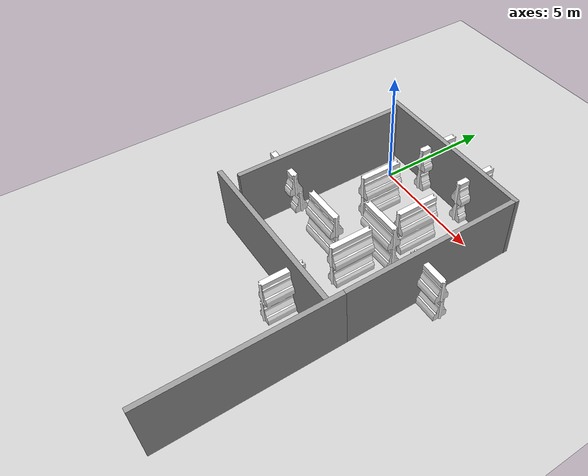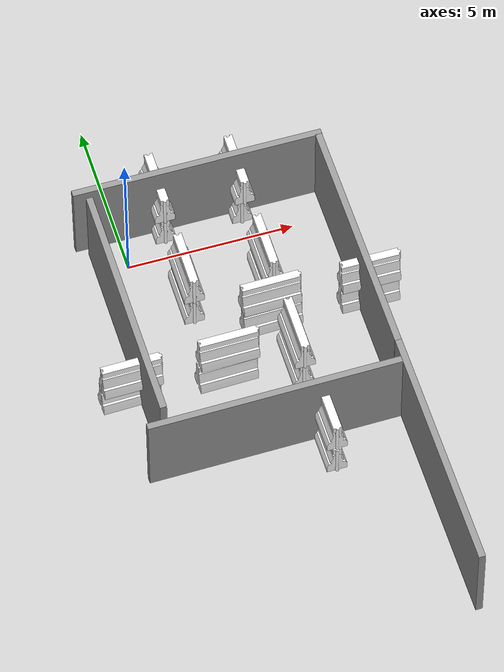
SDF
<sdf version="1.6">
 <world name="vrc_task_1">
  <scene>
   <ambient>0.4 0.4 0.4 1</ambient>
   <background>0.7 0.7 0.7 1</background>
   <shadows>1</shadows>
   <sky><clouds><speed>1</speed></clouds></sky>
  </scene>
  <physics name="default_physics" default="0" type="ode">
   <ode>
    <solver>
     <type>quick</type>
     <iters>10</iters>
     <sor>1</sor>
     <use_dynamic_moi_rescaling>0</use_dynamic_moi_rescaling>
    </solver>
    <constraints>
     <cfm>0</cfm>
     <erp>0.2</erp>
     <contact_max_correcting_vel>100</contact_max_correcting_vel>
     <contact_surface_layer>0.001</contact_surface_layer>
    </constraints>
   </ode>
   <max_step_size>0.004</max_step_size>
   <real_time_factor>1</real_time_factor>
   <real_time_update_rate>250</real_time_update_rate>
  </physics>
  <light name="sun" type="directional">
   <pose>0 0 10 0 -0 0</pose>
   <diffuse>0.8 0.8 0.8 1</diffuse>
   <specular>0.2 0.2 0.2 1</specular>
   <attenuation>
    <range>1000</range>
    <constant>0.9</constant>
    <linear>0.01</linear>
    <quadratic>0.001</quadratic>
   </attenuation>
   <direction>-0.5 0.1 -0.9</direction>
  </light>
  <model name="ground_plane">
   <static>1</static>
   <link name="link">
    <collision name="collision">
     <geometry><plane><normal>0 0 1</normal><size>100 100</size></plane></geometry>
     <surface><friction><ode><mu>100</mu><mu2>50</mu2></ode></friction></surface>
    </collision>
    <visual name="visual">
     <cast_shadows>0</cast_shadows>
     <geometry><plane><normal>0 0 1</normal><size>100 100</size></plane></geometry>
     <material>
      <script><uri>file://media/materials/scripts/gazebo.material</uri><name>Gazebo/Grey</name></script>
     </material>
    </visual>
   </link>
  </model>
  <gravity>0 0 -9.8066</gravity>
  <magnetic_field>6e-06 2.3e-05 -4.2e-05</magnetic_field>
  <atmosphere type="adiabatic"/>
  <spherical_coordinates>
   <surface_model>EARTH_WGS84</surface_model>
   <latitude_deg>0</latitude_deg>
   <longitude_deg>0</longitude_deg>
   <elevation>0</elevation>
   <heading_deg>0</heading_deg>
  </spherical_coordinates>
  <model name="grey_wall">
   <static>1</static>
   <link name="link">
    <pose>0 0 1.4 0 -0 0</pose>
    <collision name="collision"><geometry><box><size>7.5 0.2 2.8</size></box></geometry></collision>
    <visual name="visual">
     <cast_shadows>0</cast_shadows>
     <geometry><box><size>7.5 0.2 2.8</size></box></geometry>
     <material>
      <script>
       <uri>model://grey_wall/materials/scripts</uri>
       <uri>model://grey_wall/materials/textures</uri>
       <name>vrc/grey_wall</name>
      </script>
     </material>
    </visual>
   </link>
   <pose>2.45648 1.09306 0 0 -0 0</pose>
  </model>
  <model name="grey_wall_0">
   <static>1</static>
   <link name="link">
    <pose>0 0 1.4 0 -0 0</pose>
    <collision name="collision"><geometry><box><size>7.5 0.2 2.8</size></box></geometry></collision>
    <visual name="visual">
     <cast_shadows>0</cast_shadows>
     <geometry><box><size>7.5 0.2 2.8</size></box></geometry>
     <material>
      <script>
       <uri>model://grey_wall/materials/scripts</uri>
       <uri>model://grey_wall/materials/textures</uri>
       <name>vrc/grey_wall</name>
      </script>
     </material>
    </visual>
   </link>
   <pose>6.09625 -2.71939 0 0 0 -1.57159</pose>
  </model>
  <model name="grey_wall_2">
   <static>1</static>
   <link name="link">
    <pose>0 0 1.4 0 -0 0</pose>
    <collision name="collision"><geometry><box><size>7.5 0.2 2.8</size></box></geometry></collision>
    <visual name="visual">
     <cast_shadows>0</cast_shadows>
     <geometry><box><size>7.5 0.2 2.8</size></box></geometry>
     <material>
      <script>
       <uri>model://grey_wall/materials/scripts</uri>
       <uri>model://grey_wall/materials/textures</uri>
       <name>vrc/grey_wall</name>
      </script>
     </material>
    </visual>
   </link>
   <pose>2.26246 -7.14335 0 0 0 -3.13251</pose>
  </model>
  <model name="grey_wall_0_clone">
   <static>1</static>
   <link name="link">
    <pose>0 0 1.4 0 -0 0</pose>
    <collision name="collision"><geometry><box><size>7.5 0.2 2.8</size></box></geometry></collision>
    <visual name="visual">
     <cast_shadows>0</cast_shadows>
     <geometry><box><size>7.5 0.2 2.8</size></box></geometry>
     <material>
      <script>
       <uri>model://grey_wall/materials/scripts</uri>
       <uri>model://grey_wall/materials/textures</uri>
       <name>vrc/grey_wall</name>
      </script>
     </material>
    </visual>
   </link>
   <pose>6.09316 -10.2058 0 0 0 -1.57159</pose>
  </model>
  <model name="drc_practice_white_jersey_barrier">
   <static>1</static>
   <link name="link">
    <visual name="visual">
     <geometry>
      <mesh><uri>model://drc_practice_white_jersey_barrier/meshes/jersey_barrier.dae</uri></mesh>
     </geometry>
    </visual>
    <collision name="collision">
     <geometry>
      <mesh><uri>model://drc_practice_white_jersey_barrier/meshes/jersey_barrier.dae</uri></mesh>
     </geometry>
    </collision>
   </link>
   <pose>1.31068 -1.51975 0 0 -0 0</pose>
  </model>
  <model name="drc_practice_white_jersey_barrier_0">
   <static>1</static>
   <link name="link">
    <visual name="visual">
     <geometry>
      <mesh><uri>model://drc_practice_white_jersey_barrier/meshes/jersey_barrier.dae</uri></mesh>
     </geometry>
    </visual>
    <collision name="collision">
     <geometry>
      <mesh><uri>model://drc_practice_white_jersey_barrier/meshes/jersey_barrier.dae</uri></mesh>
     </geometry>
    </collision>
   </link>
   <pose>1.31358 -1.52707 1.04398 0 -0 0</pose>
  </model>
  <model name="drc_practice_white_jersey_barrier_0_clone">
   <static>1</static>
   <link name="link">
    <visual name="visual">
     <geometry>
      <mesh><uri>model://drc_practice_white_jersey_barrier/meshes/jersey_barrier.dae</uri></mesh>
     </geometry>
    </visual>
    <collision name="collision">
     <geometry>
      <mesh><uri>model://drc_practice_white_jersey_barrier/meshes/jersey_barrier.dae</uri></mesh>
     </geometry>
    </collision>
   </link>
   <pose>1.31197 1.43 1.04398 0 -0 0</pose>
  </model>
  <model name="drc_practice_white_jersey_barrier_0_clone_0">
   <static>1</static>
   <link name="link">
    <visual name="visual">
     <geometry>
      <mesh><uri>model://drc_practice_white_jersey_barrier/meshes/jersey_barrier.dae</uri></mesh>
     </geometry>
    </visual>
    <collision name="collision">
     <geometry>
      <mesh><uri>model://drc_practice_white_jersey_barrier/meshes/jersey_barrier.dae</uri></mesh>
     </geometry>
    </collision>
   </link>
   <pose>1.31226 1.43327 0.0011 0 -0 0</pose>
  </model>
  <model name="grey_wall_0_clone_0">
   <static>1</static>
   <link name="link">
    <pose>0 0 1.4 0 -0 0</pose>
    <collision name="collision"><geometry><box><size>7.5 0.2 2.8</size></box></geometry></collision>
    <visual name="visual">
     <cast_shadows>0</cast_shadows>
     <geometry><box><size>7.5 0.2 2.8</size></box></geometry>
     <material>
      <script>
       <uri>model://grey_wall/materials/scripts</uri>
       <uri>model://grey_wall/materials/textures</uri>
       <name>vrc/grey_wall</name>
      </script>
     </material>
    </visual>
   </link>
   <pose>-0.867017 -2.94712 0 0 0 -1.57159</pose>
  </model>
  <model name="drc_practice_white_jersey_barrier_clone">
   <static>1</static>
   <link name="link">
    <visual name="visual">
     <geometry>
      <mesh><uri>model://drc_practice_white_jersey_barrier/meshes/jersey_barrier.dae</uri></mesh>
     </geometry>
    </visual>
    <collision name="collision">
     <geometry>
      <mesh><uri>model://drc_practice_white_jersey_barrier/meshes/jersey_barrier.dae</uri></mesh>
     </geometry>
    </collision>
   </link>
   <pose>1.62625 -4.49568 0 0 -0 1.60018</pose>
  </model>
  <model name="drc_practice_white_jersey_barrier_0_clone_1">
   <static>1</static>
   <link name="link">
    <visual name="visual">
     <geometry>
      <mesh><uri>model://drc_practice_white_jersey_barrier/meshes/jersey_barrier.dae</uri></mesh>
     </geometry>
    </visual>
    <collision name="collision">
     <geometry>
      <mesh><uri>model://drc_practice_white_jersey_barrier/meshes/jersey_barrier.dae</uri></mesh>
     </geometry>
    </collision>
   </link>
   <pose>1.67192 -4.48464 1.04398 0 -0 1.58859</pose>
  </model>
  <model name="drc_practice_white_jersey_barrier_clone_0">
   <static>1</static>
   <link name="link">
    <visual name="visual">
     <geometry>
      <mesh><uri>model://drc_practice_white_jersey_barrier/meshes/jersey_barrier.dae</uri></mesh>
     </geometry>
    </visual>
    <collision name="collision">
     <geometry>
      <mesh><uri>model://drc_practice_white_jersey_barrier/meshes/jersey_barrier.dae</uri></mesh>
     </geometry>
    </collision>
   </link>
   <pose>3.6953 -1.56201 0 0 -0 0</pose>
  </model>
  <model name="drc_practice_white_jersey_barrier_0_clone_2">
   <static>1</static>
   <link name="link">
    <visual name="visual">
     <geometry>
      <mesh><uri>model://drc_practice_white_jersey_barrier/meshes/jersey_barrier.dae</uri></mesh>
     </geometry>
    </visual>
    <collision name="collision">
     <geometry>
      <mesh><uri>model://drc_practice_white_jersey_barrier/meshes/jersey_barrier.dae</uri></mesh>
     </geometry>
    </collision>
   </link>
   <pose>3.69353 -1.55184 1.04398 0 -0 0</pose>
  </model>
  <model name="drc_practice_white_jersey_barrier_0_clone_3">
   <static>1</static>
   <link name="link">
    <visual name="visual">
     <geometry>
      <mesh><uri>model://drc_practice_white_jersey_barrier/meshes/jersey_barrier.dae</uri></mesh>
     </geometry>
    </visual>
    <collision name="collision">
     <geometry>
      <mesh><uri>model://drc_practice_white_jersey_barrier/meshes/jersey_barrier.dae</uri></mesh>
     </geometry>
    </collision>
   </link>
   <pose>6.33645 -3.1126 1.04398 0 -0 1.56571</pose>
  </model>
  <model name="drc_practice_white_jersey_barrier_clone_1">
   <static>1</static>
   <link name="link">
    <visual name="visual">
     <geometry>
      <mesh><uri>model://drc_practice_white_jersey_barrier/meshes/jersey_barrier.dae</uri></mesh>
     </geometry>
    </visual>
    <collision name="collision">
     <geometry>
      <mesh><uri>model://drc_practice_white_jersey_barrier/meshes/jersey_barrier.dae</uri></mesh>
     </geometry>
    </collision>
   </link>
   <pose>6.3415 -3.07978 0 0 -0 1.56662</pose>
  </model>
  <model name="drc_practice_white_jersey_barrier_clone_2">
   <static>1</static>
   <link name="link">
    <visual name="visual">
     <geometry>
      <mesh><uri>model://drc_practice_white_jersey_barrier/meshes/jersey_barrier.dae</uri></mesh>
     </geometry>
    </visual>
    <collision name="collision">
     <geometry>
      <mesh><uri>model://drc_practice_white_jersey_barrier/meshes/jersey_barrier.dae</uri></mesh>
     </geometry>
    </collision>
   </link>
   <pose>3.66993 -4.55767 0 0 -0 0</pose>
  </model>
  <model name="drc_practice_white_jersey_barrier_0_clone_4">
   <static>1</static>
   <link name="link">
    <visual name="visual">
     <geometry>
      <mesh><uri>model://drc_practice_white_jersey_barrier/meshes/jersey_barrier.dae</uri></mesh>
     </geometry>
    </visual>
    <collision name="collision">
     <geometry>
      <mesh><uri>model://drc_practice_white_jersey_barrier/meshes/jersey_barrier.dae</uri></mesh>
     </geometry>
    </collision>
   </link>
   <pose>3.68542 -4.58808 1.04398 0 -0 0</pose>
  </model>
  <model name="drc_practice_white_jersey_barrier_0_clone_2_clone">
   <static>1</static>
   <link name="link">
    <visual name="visual">
     <geometry>
      <mesh><uri>model://drc_practice_white_jersey_barrier/meshes/jersey_barrier.dae</uri></mesh>
     </geometry>
    </visual>
    <collision name="collision">
     <geometry>
      <mesh><uri>model://drc_practice_white_jersey_barrier/meshes/jersey_barrier.dae</uri></mesh>
     </geometry>
    </collision>
   </link>
   <pose>3.71447 1.37987 1.04398 0 -0 0</pose>
  </model>
  <model name="drc_practice_white_jersey_barrier_clone_0_clone">
   <static>1</static>
   <link name="link">
    <visual name="visual">
     <geometry>
      <mesh><uri>model://drc_practice_white_jersey_barrier/meshes/jersey_barrier.dae</uri></mesh>
     </geometry>
    </visual>
    <collision name="collision">
     <geometry>
      <mesh><uri>model://drc_practice_white_jersey_barrier/meshes/jersey_barrier.dae</uri></mesh>
     </geometry>
    </collision>
   </link>
   <pose>3.65663 1.47149 0 0 -0 0</pose>
  </model>
  <model name="drc_practice_white_jersey_barrier_clone_clone">
   <static>1</static>
   <link name="link">
    <visual name="visual">
     <geometry>
      <mesh><uri>model://drc_practice_white_jersey_barrier/meshes/jersey_barrier.dae</uri></mesh>
     </geometry>
    </visual>
    <collision name="collision">
     <geometry>
      <mesh><uri>model://drc_practice_white_jersey_barrier/meshes/jersey_barrier.dae</uri></mesh>
     </geometry>
    </collision>
   </link>
   <pose>3.41047 -3.06161 0 0 -0 1.60018</pose>
  </model>
  <model name="drc_practice_white_jersey_barrier_0_clone_1_clone">
   <static>1</static>
   <link name="link">
    <visual name="visual">
     <geometry>
      <mesh><uri>model://drc_practice_white_jersey_barrier/meshes/jersey_barrier.dae</uri></mesh>
     </geometry>
    </visual>
    <collision name="collision">
     <geometry>
      <mesh><uri>model://drc_practice_white_jersey_barrier/meshes/jersey_barrier.dae</uri></mesh>
     </geometry>
    </collision>
   </link>
   <pose>3.38412 -3.01768 1.04398 0 -0 1.58859</pose>
  </model>
  <model name="drc_practice_white_jersey_barrier_0_clone_1_clone_0">
   <static>1</static>
   <link name="link">
    <visual name="visual">
     <geometry>
      <mesh><uri>model://drc_practice_white_jersey_barrier/meshes/jersey_barrier.dae</uri></mesh>
     </geometry>
    </visual>
    <collision name="collision">
     <geometry>
      <mesh><uri>model://drc_practice_white_jersey_barrier/meshes/jersey_barrier.dae</uri></mesh>
     </geometry>
    </collision>
   </link>
   <pose>3.71545 -7.48844 1.04398 0 -0 0.003969</pose>
  </model>
  <model name="drc_practice_white_jersey_barrier_clone_2_clone">
   <static>1</static>
   <link name="link">
    <visual name="visual">
     <geometry>
      <mesh><uri>model://drc_practice_white_jersey_barrier/meshes/jersey_barrier.dae</uri></mesh>
     </geometry>
    </visual>
    <collision name="collision">
     <geometry>
      <mesh><uri>model://drc_practice_white_jersey_barrier/meshes/jersey_barrier.dae</uri></mesh>
     </geometry>
    </collision>
   </link>
   <pose>3.70914 -7.53489 0 0 -0 0</pose>
  </model>
  <model name="drc_practice_white_jersey_barrier_0_clone_1_clone_1">
   <static>1</static>
   <link name="link">
    <visual name="visual">
     <geometry>
      <mesh><uri>model://drc_practice_white_jersey_barrier/meshes/jersey_barrier.dae</uri></mesh>
     </geometry>
    </visual>
    <collision name="collision">
     <geometry>
      <mesh><uri>model://drc_practice_white_jersey_barrier/meshes/jersey_barrier.dae</uri></mesh>
     </geometry>
    </collision>
   </link>
   <pose>-1.21385 -4.5547 1.04398 0 -0 1.58859</pose>
  </model>
  <model name="drc_practice_white_jersey_barrier_clone_clone_0">
   <static>1</static>
   <link name="link">
    <visual name="visual">
     <geometry>
      <mesh><uri>model://drc_practice_white_jersey_barrier/meshes/jersey_barrier.dae</uri></mesh>
     </geometry>
    </visual>
    <collision name="collision">
     <geometry>
      <mesh><uri>model://drc_practice_white_jersey_barrier/meshes/jersey_barrier.dae</uri></mesh>
     </geometry>
    </collision>
   </link>
   <pose>-1.22225 -4.36816 0 0 -0 1.60018</pose>
  </model>
 </world>
</sdf>
